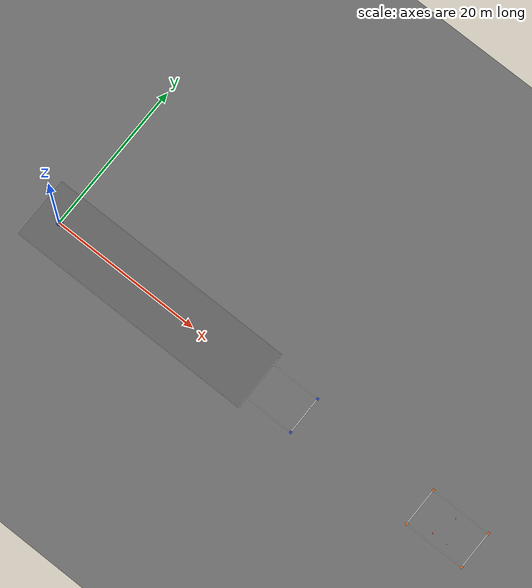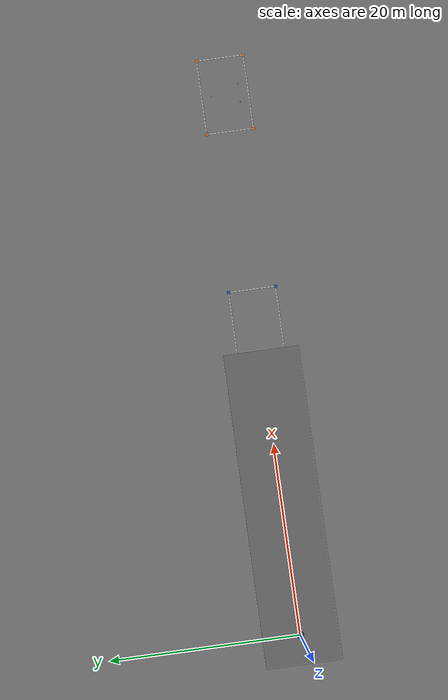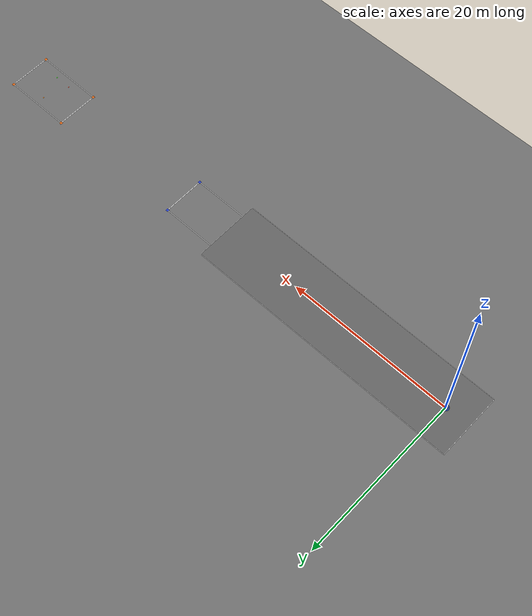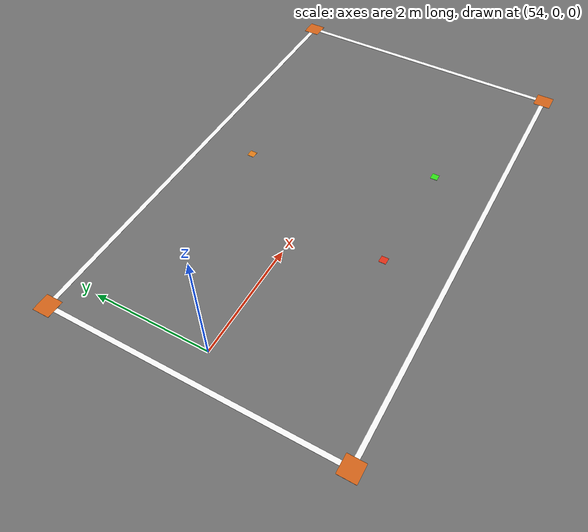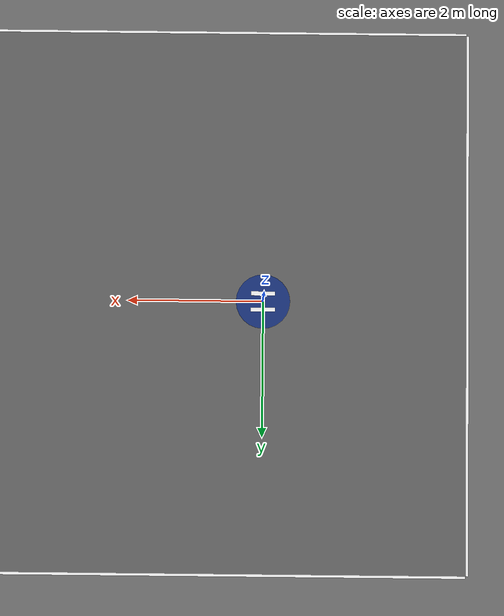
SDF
<sdf version="1.6">
 <world name="cuadc_2026_field">
  <physics type="ode">
   <ode>
    <solver><type>quick</type><iters>100</iters><sor>1.0</sor></solver>
    <constraints>
     <cfm>0.0</cfm>
     <erp>0.2</erp>
     <contact_max_correcting_vel>0.1</contact_max_correcting_vel>
     <contact_surface_layer>0.0</contact_surface_layer>
    </constraints>
   </ode>
   <real_time_update_rate>-1</real_time_update_rate>
  </physics>
  <gravity>0 0 -9.8</gravity>
  <scene><ambient>0.4 0.4 0.4 1</ambient><background>0.7 0.7 0.7 1</background><shadows>true</shadows></scene>
  <light name="sun" type="directional">
   <pose>0 0 20 0 -0 0</pose>
   <diffuse>0.8 0.8 0.8 1</diffuse>
   <specular>0.2 0.2 0.2 1</specular>
   <direction>0.5 0.5 -1</direction>
  </light>
  <model name="ground_plane">
   <static>true</static>
   <link name="link">
    <collision name="collision">
     <geometry><plane><normal>0 0 1</normal><size>5000 5000</size></plane></geometry>
     <surface><friction><ode><mu>100</mu><mu2>50</mu2></ode></friction></surface>
    </collision>
    <visual name="runway">
     <pose>0 0 0.005 0 0 0</pose>
     <geometry><plane><normal>0 0 1</normal><size>5000 5000</size></plane></geometry>
     <material><ambient>0.35 0.35 0.35 1</ambient><diffuse>0.45 0.45 0.45 1</diffuse></material>
    </visual>
   </link>
  </model>
  <model name="takeoff_zone">
   <static>true</static>
   <pose>13.5 0 0.02 0 0 0</pose>
   <link name="link">
    <collision name="collision"><geometry><box><size>33 8 0.01</size></box></geometry></collision>
    <visual name="visual">
     <geometry><box><size>33 8 0.01</size></box></geometry>
     <material><ambient>0.3 0.3 0.3 1</ambient><diffuse>0.4 0.4 0.4 1</diffuse></material>
    </visual>
   </link>
  </model>
  <model name="takeoff_border_N">
   <static>true</static>
   <pose>13.5 4 0.005 0 0 0</pose>
   <link name="link">
    <visual name="v">
     <geometry><box><size>33 0.08 0.002</size></box></geometry>
     <material><ambient>1 1 1 1</ambient><diffuse>1 1 1 1</diffuse></material>
    </visual>
   </link>
  </model>
  <model name="takeoff_border_S">
   <static>true</static>
   <pose>13.5 -4 0.005 0 0 0</pose>
   <link name="link">
    <visual name="v">
     <geometry><box><size>33 0.08 0.002</size></box></geometry>
     <material><ambient>1 1 1 1</ambient><diffuse>1 1 1 1</diffuse></material>
    </visual>
   </link>
  </model>
  <model name="takeoff_border_E">
   <static>true</static>
   <pose>30 0 0.005 0 0 0</pose>
   <link name="link">
    <visual name="v">
     <geometry><box><size>0.08 8 0.002</size></box></geometry>
     <material><ambient>1 1 1 1</ambient><diffuse>1 1 1 1</diffuse></material>
    </visual>
   </link>
  </model>
  <model name="takeoff_border_W">
   <static>true</static>
   <pose>-3 0 0.005 0 0 0</pose>
   <link name="link">
    <visual name="v">
     <geometry><box><size>0.08 8 0.002</size></box></geometry>
     <material><ambient>1 1 1 1</ambient><diffuse>1 1 1 1</diffuse></material>
    </visual>
   </link>
  </model>
  <model name="landing_pad">
   <static>true</static>
   <pose>0 0 0.025 0 0 0</pose>
   <link name="link">
    <collision name="collision">
     <geometry><cylinder><radius>0.4</radius><length>0.001</length></cylinder></geometry>
    </collision>
    <visual name="visual">
     <geometry><cylinder><radius>0.4</radius><length>0.001</length></cylinder></geometry>
     <material><ambient>0.1 0.1 0.3 1</ambient><diffuse>0.1 0.2 0.5 1</diffuse></material>
    </visual>
   </link>
  </model>
  <model name="landing_h_horiz">
   <static>true</static>
   <pose>0 0 0.03 0 0 0</pose>
   <link name="link">
    <visual name="visual">
     <geometry><box><size>0.06 0.2 0.01</size></box></geometry>
     <material><ambient>1 1 1 1</ambient><diffuse>1 1 1 1</diffuse></material>
    </visual>
   </link>
  </model>
  <model name="landing_h_left">
   <static>true</static>
   <pose>0 -0.12 0.03 0 0 0</pose>
   <link name="link">
    <visual name="visual">
     <geometry><box><size>0.36 0.06 0.01</size></box></geometry>
     <material><ambient>1 1 1 1</ambient><diffuse>1 1 1 1</diffuse></material>
    </visual>
   </link>
  </model>
  <model name="landing_h_right">
   <static>true</static>
   <pose>0 0.12 0.03 0 0 0</pose>
   <link name="link">
    <visual name="visual">
     <geometry><box><size>0.36 0.06 0.01</size></box></geometry>
     <material><ambient>1 1 1 1</ambient><diffuse>1 1 1 1</diffuse></material>
    </visual>
   </link>
  </model>
  <model name="takeoff_line">
   <static>true</static>
   <pose>2 0 0.012 0 0 0</pose>
   <link name="link">
    <visual name="visual">
     <geometry><box><size>0.05 3 0.001</size></box></geometry>
     <material><ambient>1 0 0 1</ambient><diffuse>0.9 0.1 0.1 1</diffuse></material>
    </visual>
   </link>
  </model>
  <model name="drop_border_N">
   <static>true</static>
   <pose>32.5 2.5 0.005 0 0 0</pose>
   <link name="link">
    <visual name="v">
     <geometry><box><size>8 0.08 0.002</size></box></geometry>
     <material><ambient>1 1 1 1</ambient><diffuse>1 1 1 1</diffuse></material>
    </visual>
   </link>
  </model>
  <model name="drop_border_S">
   <static>true</static>
   <pose>32.5 -2.5 0.005 0 0 0</pose>
   <link name="link">
    <visual name="v">
     <geometry><box><size>8 0.08 0.002</size></box></geometry>
     <material><ambient>1 1 1 1</ambient><diffuse>1 1 1 1</diffuse></material>
    </visual>
   </link>
  </model>
  <model name="drop_border_E">
   <static>true</static>
   <pose>36.5 0 0.005 0 0 0</pose>
   <link name="link">
    <visual name="v">
     <geometry><box><size>0.08 5 0.002</size></box></geometry>
     <material><ambient>1 1 1 1</ambient><diffuse>1 1 1 1</diffuse></material>
    </visual>
   </link>
  </model>
  <model name="drop_border_W">
   <static>true</static>
   <pose>28.5 0 0.005 0 0 0</pose>
   <link name="link">
    <visual name="v">
     <geometry><box><size>0.08 5 0.002</size></box></geometry>
     <material><ambient>1 1 1 1</ambient><diffuse>1 1 1 1</diffuse></material>
    </visual>
   </link>
  </model>
  <model name="drop_corner_NE">
   <static>true</static>
   <pose>36.5 2.5 0.005 0 0 0</pose>
   <link name="link">
    <visual name="v">
     <geometry><box><size>0.3 0.3 0.003</size></box></geometry>
     <material><ambient>0.1 0.2 0.7 1</ambient><diffuse>0.15 0.25 0.8 1</diffuse></material>
    </visual>
   </link>
  </model>
  <model name="drop_corner_NW">
   <static>true</static>
   <pose>28.5 2.5 0.005 0 0 0</pose>
   <link name="link">
    <visual name="v">
     <geometry><box><size>0.3 0.3 0.003</size></box></geometry>
     <material><ambient>0.1 0.2 0.7 1</ambient><diffuse>0.15 0.25 0.8 1</diffuse></material>
    </visual>
   </link>
  </model>
  <model name="drop_corner_SE">
   <static>true</static>
   <pose>36.5 -2.5 0.005 0 0 0</pose>
   <link name="link">
    <visual name="v">
     <geometry><box><size>0.3 0.3 0.003</size></box></geometry>
     <material><ambient>0.1 0.2 0.7 1</ambient><diffuse>0.15 0.25 0.8 1</diffuse></material>
    </visual>
   </link>
  </model>
  <model name="drop_corner_SW">
   <static>true</static>
   <pose>28.5 -2.5 0.005 0 0 0</pose>
   <link name="link">
    <visual name="v">
     <geometry><box><size>0.3 0.3 0.003</size></box></geometry>
     <material><ambient>0.1 0.2 0.7 1</ambient><diffuse>0.15 0.25 0.8 1</diffuse></material>
    </visual>
   </link>
  </model>
  <model name="recon_border_N">
   <static>true</static>
   <pose>57.5 2.5 0.005 0 0 0</pose>
   <link name="link">
    <visual name="v">
     <geometry><box><size>8 0.08 0.002</size></box></geometry>
     <material><ambient>1 1 1 1</ambient><diffuse>1 1 1 1</diffuse></material>
    </visual>
   </link>
  </model>
  <model name="recon_border_S">
   <static>true</static>
   <pose>57.5 -2.5 0.005 0 0 0</pose>
   <link name="link">
    <visual name="v">
     <geometry><box><size>8 0.08 0.002</size></box></geometry>
     <material><ambient>1 1 1 1</ambient><diffuse>1 1 1 1</diffuse></material>
    </visual>
   </link>
  </model>
  <model name="recon_border_E">
   <static>true</static>
   <pose>61.5 0 0.005 0 0 0</pose>
   <link name="link">
    <visual name="v">
     <geometry><box><size>0.08 5 0.002</size></box></geometry>
     <material><ambient>1 1 1 1</ambient><diffuse>1 1 1 1</diffuse></material>
    </visual>
   </link>
  </model>
  <model name="recon_border_W">
   <static>true</static>
   <pose>53.5 0 0.005 0 0 0</pose>
   <link name="link">
    <visual name="v">
     <geometry><box><size>0.08 5 0.002</size></box></geometry>
     <material><ambient>1 1 1 1</ambient><diffuse>1 1 1 1</diffuse></material>
    </visual>
   </link>
  </model>
  <model name="recon_corner_NE">
   <static>true</static>
   <pose>61.5 2.5 0.005 0 0 0</pose>
   <link name="link">
    <visual name="v">
     <geometry><box><size>0.3 0.3 0.003</size></box></geometry>
     <material><ambient>0.7 0.3 0.05 1</ambient><diffuse>0.85 0.4 0.1 1</diffuse></material>
    </visual>
   </link>
  </model>
  <model name="recon_corner_NW">
   <static>true</static>
   <pose>53.5 2.5 0.005 0 0 0</pose>
   <link name="link">
    <visual name="v">
     <geometry><box><size>0.3 0.3 0.003</size></box></geometry>
     <material><ambient>0.7 0.3 0.05 1</ambient><diffuse>0.85 0.4 0.1 1</diffuse></material>
    </visual>
   </link>
  </model>
  <model name="recon_corner_SE">
   <static>true</static>
   <pose>61.5 -2.5 0.005 0 0 0</pose>
   <link name="link">
    <visual name="v">
     <geometry><box><size>0.3 0.3 0.003</size></box></geometry>
     <material><ambient>0.7 0.3 0.05 1</ambient><diffuse>0.85 0.4 0.1 1</diffuse></material>
    </visual>
   </link>
  </model>
  <model name="recon_corner_SW">
   <static>true</static>
   <pose>53.5 -2.5 0.005 0 0 0</pose>
   <link name="link">
    <visual name="v">
     <geometry><box><size>0.3 0.3 0.003</size></box></geometry>
     <material><ambient>0.7 0.3 0.05 1</ambient><diffuse>0.85 0.4 0.1 1</diffuse></material>
    </visual>
   </link>
  </model>
  <model name="hazard_sign_1">
   <static>true</static>
   <pose>56.5 -1.5 0.16 0 0 0</pose>
   <link name="link">
    <visual name="visual">
     <geometry><box><size>0.12 0.12 0.005</size></box></geometry>
     <material><ambient>1 0.3 0 1</ambient><diffuse>0.9 0.2 0.1 1</diffuse></material>
    </visual>
   </link>
  </model>
  <model name="hazard_sign_2">
   <static>true</static>
   <pose>58.5 -1.5 0.16 0 0 0</pose>
   <link name="link">
    <visual name="visual">
     <geometry><box><size>0.12 0.12 0.005</size></box></geometry>
     <material><ambient>0.3 1 0 1</ambient><diffuse>0.2 0.9 0.1 1</diffuse></material>
    </visual>
   </link>
  </model>
  <model name="hazard_sign_3">
   <static>true</static>
   <pose>57.5 1.5 0.16 0 0 0</pose>
   <link name="link">
    <visual name="visual">
     <geometry><box><size>0.12 0.12 0.005</size></box></geometry>
     <material><ambient>1 0.6 0 1</ambient><diffuse>0.9 0.5 0.1 1</diffuse></material>
    </visual>
   </link>
  </model>
 </world>
</sdf>
